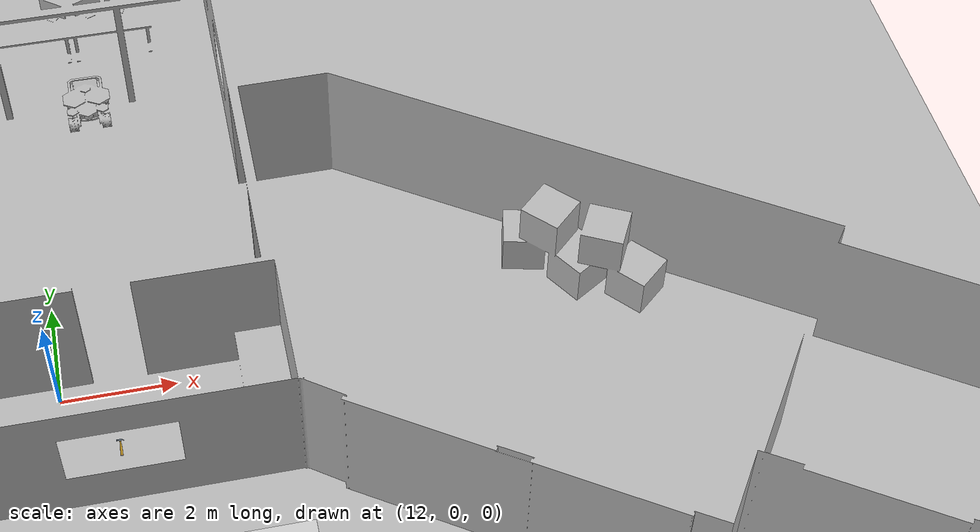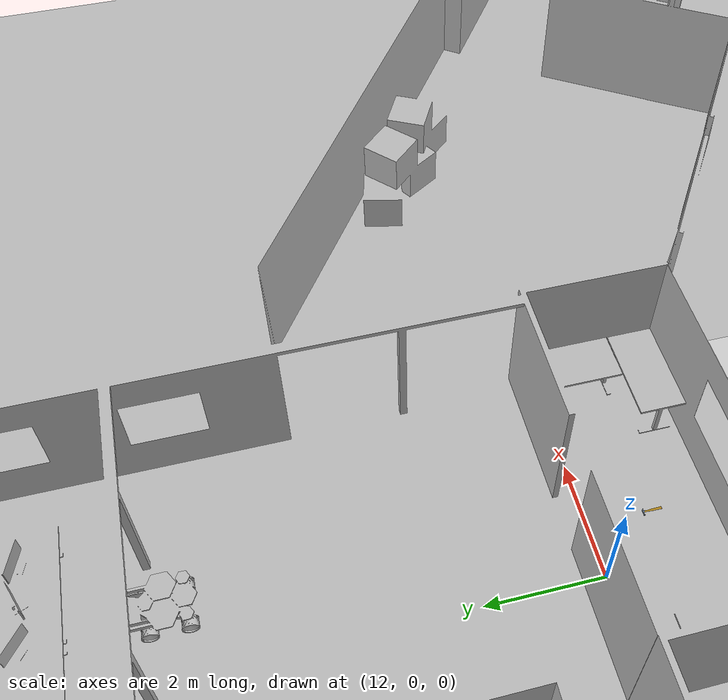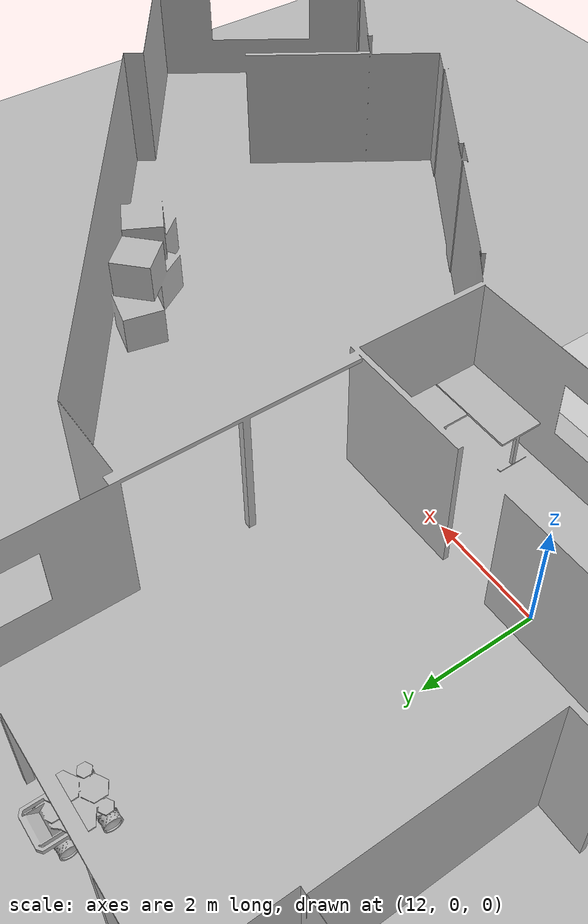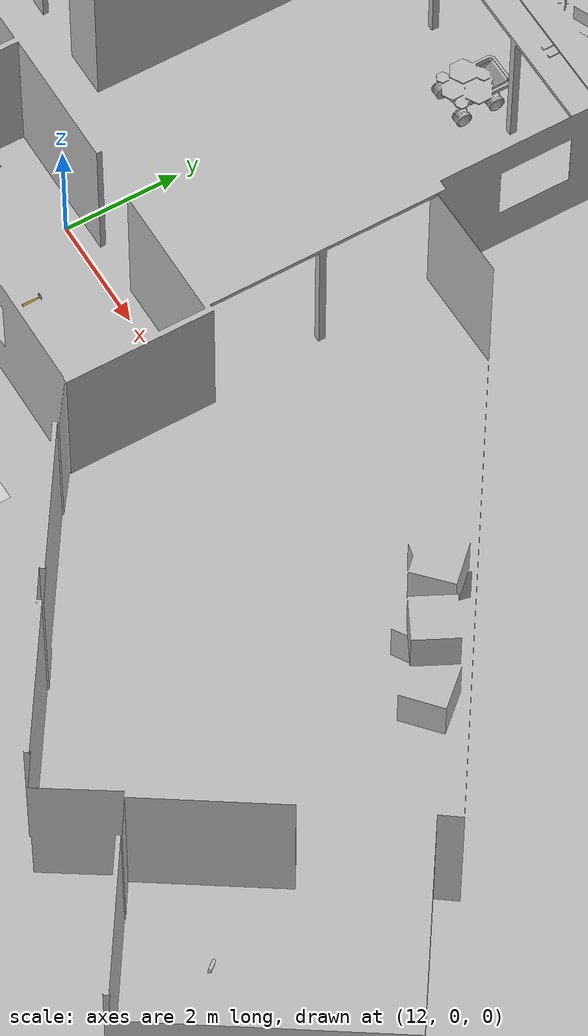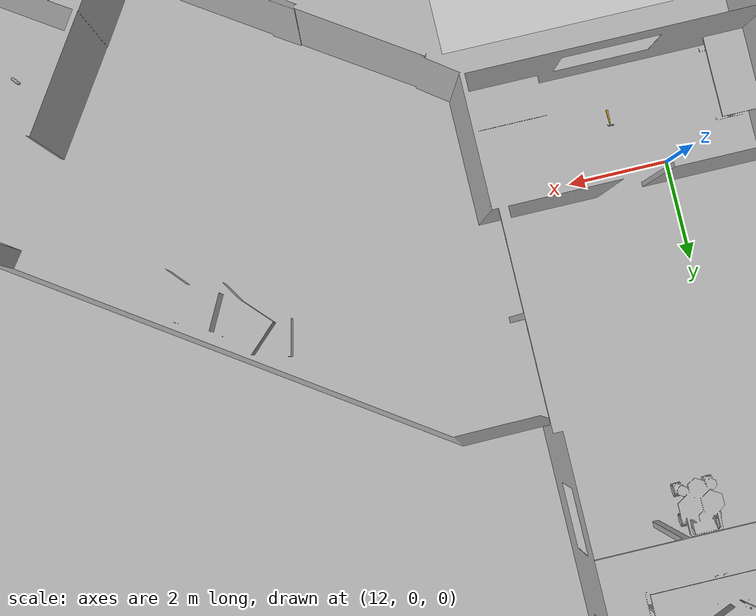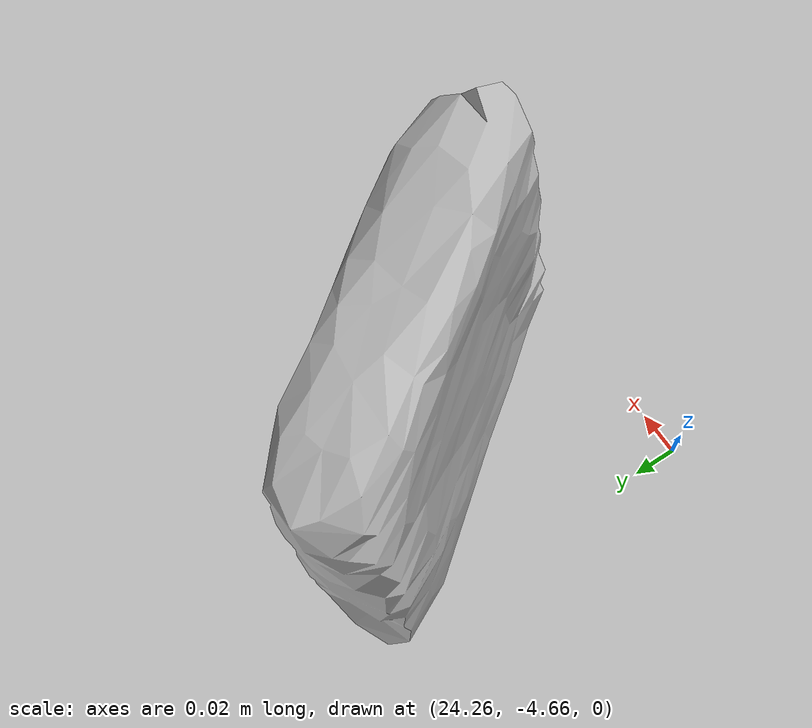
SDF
<sdf version="1.6">
 <world name="default">
  <model name="ground_plane">
   <static>1</static>
   <link name="link">
    <collision name="collision">
     <geometry><plane><normal>0 0 1</normal><size>100 100</size></plane></geometry>
     <surface>
      <contact><collide_bitmask>65535</collide_bitmask></contact>
      <friction><ode><mu>100</mu><mu2>50</mu2></ode></friction>
     </surface>
    </collision>
    <visual name="visual">
     <cast_shadows>0</cast_shadows>
     <geometry><plane><normal>0 0 1</normal><size>100 100</size></plane></geometry>
     <material>
      <script><uri>file://media/materials/scripts/gazebo.material</uri><name>Gazebo/Grey</name></script>
     </material>
    </visual>
   </link>
  </model>
  <light name="sun" type="directional">
   <pose>0 0 10 0 -0 0</pose>
   <diffuse>0.8 0.8 0.8 1</diffuse>
   <specular>0.2 0.2 0.2 1</specular>
   <attenuation>
    <range>1000</range>
    <constant>0.9</constant>
    <linear>0.01</linear>
    <quadratic>0.001</quadratic>
   </attenuation>
   <direction>-0.5 0.1 -0.9</direction>
  </light>
  <model name="office">
   <static>1</static>
   <link name="link">
    <collision name="colision1">
     <geometry><mesh><uri>model://office/meshes/SB_fixed.obj</uri></mesh></geometry>
    </collision>
    <visual name="visual1">
     <geometry><mesh><uri>model://office/meshes/SB_fixed.obj</uri></mesh></geometry>
    </visual>
   </link>
  </model>
  <gravity>0 0 -9.8</gravity>
  <magnetic_field>6e-06 2.3e-05 -4.2e-05</magnetic_field>
  <atmosphere type="adiabatic"/>
  <physics name="default_physics" default="0" type="ode">
   <max_step_size>0.001</max_step_size>
   <real_time_factor>1</real_time_factor>
   <real_time_update_rate>1000</real_time_update_rate>
  </physics>
  <scene><ambient>0.4 0.4 0.4 1</ambient><background>0.7 0.7 0.7 1</background><shadows>1</shadows></scene>
  <audio><device>default</device></audio>
  <spherical_coordinates>
   <surface_model>EARTH_WGS84</surface_model>
   <latitude_deg>0</latitude_deg>
   <longitude_deg>0</longitude_deg>
   <elevation>0</elevation>
   <heading_deg>0</heading_deg>
  </spherical_coordinates>
  <model name="hammer">
   <static>1</static>
   <link name="link">
    <collision name="collision">
     <geometry><mesh><uri>model://hammer/meshes/hammer.dae</uri></mesh></geometry>
    </collision>
    <visual name="visual"><geometry><mesh><uri>model://hammer/meshes/hammer.dae</uri></mesh></geometry></visual>
   </link>
   <pose>12.9009 -1.05561 0 0 -0 0</pose>
  </model>
  <model name="biscuits">
   <link name="biscuits_link">
    <inertial>
     <mass>0.1</mass>
     <inertia><ixx>1</ixx><ixy>0</ixy><ixz>0</ixz><iyy>1</iyy><iyz>0</iyz><izz>1</izz></inertia>
    </inertial>
    <visual name="biscuits_visual">
     <material>
      <script>
       <uri>model://biscuits/materials/scripts</uri>
       <uri>model://biscuits/materials/textures</uri>
       <name>biscuits</name>
      </script>
     </material>
     <geometry><mesh><uri>model://biscuits/meshes/biscuits.dae</uri></mesh></geometry>
    </visual>
    <collision name="biscuits_collision">
     <pose>0.015 0.01 0.075 0 -0 2.2</pose>
     <geometry><box><size>0.19 0.06 0.15</size></box></geometry>
    </collision>
   </link>
   <pose>24.3079 -4.57461 -9e-06 1.3e-05 -2e-05 0</pose>
  </model>
  <model name="mars_rover">
   <static>1</static>
   <link name="link">
    <collision name="solar_panel_collision">
     <pose>0 -0.06945 0.47293 0 -0 0</pose>
     <geometry><box><size>0.87974 0.8821 0.02602</size></box></geometry>
    </collision>
    <collision name="chassis_collision">
     <pose>0 -0.05 0.31475 0 -0 0</pose>
     <geometry><box><size>0.49522 0.67401 0.28915</size></box></geometry>
    </collision>
    <collision name="rear_left_bumper_collision">
     <pose>0.30107 0.3835 0.38976 0 -0 0</pose>
     <geometry><box><size>0.04442 0.38897 0.07918</size></box></geometry>
    </collision>
    <collision name="rear_right_bumper_collision">
     <pose>-0.30107 0.3835 0.38976 0 -0 0</pose>
     <geometry><box><size>0.04442 0.38897 0.07918</size></box></geometry>
    </collision>
    <collision name="rear_bumper_collision">
     <pose>0 0.59414 0.38976 0 -0 0</pose>
     <geometry><box><size>0.56656 0.04442 0.07918</size></box></geometry>
    </collision>
    <collision name="bin_back_panel_collision">
     <pose>0 0.47 0.32114 0.69137 -0 0</pose>
     <geometry><box><size>0.43774 0.212366 0.05173</size></box></geometry>
    </collision>
    <collision name="bin_left_panel_collision1">
     <pose>0.22615 0.32897 0.33193 0 -0 0</pose>
     <geometry><box><size>0.01116 0.19338 0.16304</size></box></geometry>
    </collision>
    <collision name="bin_left_panel_collision2">
     <pose>0.22615 0.471 0.39308 0 -0 0</pose>
     <geometry><box><size>0.01116 0.15 0.04</size></box></geometry>
    </collision>
    <collision name="bin_left_panel_collision3">
     <pose>0.22615 0.45 0.35308 0 -0 0</pose>
     <geometry><box><size>0.01116 0.15 0.04</size></box></geometry>
    </collision>
    <collision name="bin_left_panel_collision4">
     <pose>0.22615 0.39308 0.31308 0 -0 0</pose>
     <geometry><box><size>0.01116 0.15 0.04</size></box></geometry>
    </collision>
    <collision name="bin_right_panel_collision1">
     <pose>-0.22615 0.32897 0.33193 0 -0 0</pose>
     <geometry><box><size>0.01116 0.19338 0.16304</size></box></geometry>
    </collision>
    <collision name="bin_right_panel_collision2">
     <pose>-0.22615 0.471 0.39308 0 -0 0</pose>
     <geometry><box><size>0.01116 0.15 0.04</size></box></geometry>
    </collision>
    <collision name="bin_right_panel_collision3">
     <pose>-0.22615 0.45 0.35308 0 -0 0</pose>
     <geometry><box><size>0.01116 0.15 0.04</size></box></geometry>
    </collision>
    <collision name="bin_right_panel_collision4">
     <pose>-0.22615 0.39308 0.31308 0 -0 0</pose>
     <geometry><box><size>0.01116 0.15 0.04</size></box></geometry>
    </collision>
    <collision name="bin_front_panel_collision">
     <pose>0 0.30047 0.32114 2.26207 -0 0</pose>
     <geometry><box><size>0.43774 0.212366 0.05173</size></box></geometry>
    </collision>
    <collision name="front_left_wheel_collision">
     <pose>0.31103 -0.32115 0.1358 1.5707 0 1.5707</pose>
     <geometry><cylinder><radius>0.1358</radius><length>0.1641</length></cylinder></geometry>
    </collision>
    <collision name="front_right_wheel_collision">
     <pose>-0.31103 -0.32115 0.1358 1.5707 0 1.5707</pose>
     <geometry><cylinder><radius>0.1358</radius><length>0.1641</length></cylinder></geometry>
    </collision>
    <collision name="rear_left_wheel_collision">
     <pose>0.31103 0.28049 0.1358 1.5707 0 1.5707</pose>
     <geometry><cylinder><radius>0.1358</radius><length>0.1641</length></cylinder></geometry>
    </collision>
    <collision name="rear_right_wheel_collision">
     <pose>-0.31103 0.28049 0.1358 1.5707 0 1.5707</pose>
     <geometry><cylinder><radius>0.1358</radius><length>0.1641</length></cylinder></geometry>
    </collision>
    <visual name="visual">
     <geometry><mesh><uri>model://mars_rover/meshes/rover.dae</uri></mesh></geometry>
    </visual>
   </link>
   <pose>13.0815 6.68412 0 0 -0 0</pose>
  </model>
 </world>
</sdf>
